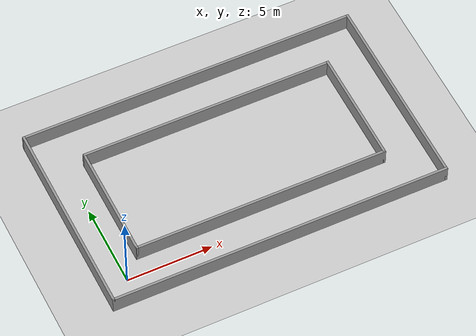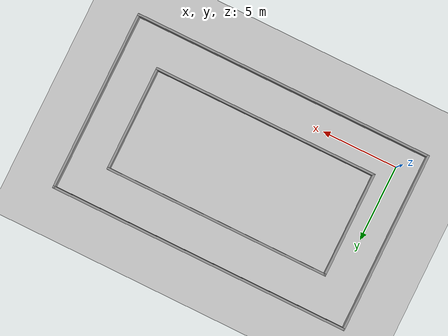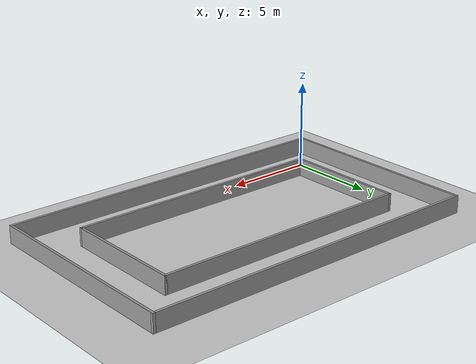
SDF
<sdf version='1.6'>
  <world name='default'>
    <light name='sun' type='directional'>
      <cast_shadows>1</cast_shadows>
      <pose frame=''>0 0 10 0 -0 0</pose>
      <diffuse>0.8 0.8 0.8 1</diffuse>
      <specular>0.2 0.2 0.2 1</specular>
      <attenuation>
        <range>1000</range>
        <constant>0.9</constant>
        <linear>0.01</linear>
        <quadratic>0.001</quadratic>
      </attenuation>
      <direction>-0.5 0.1 -0.9</direction>
    </light>
    <model name='ground_plane'>
      <static>1</static>
      <link name='link'>
        <collision name='collision'>
          <geometry>
            <plane>
              <normal>0 0 1</normal>
              <size>100 100</size>
            </plane>
          </geometry>
          <surface>
            <contact>
              <collide_bitmask>65535</collide_bitmask>
              <ode/>
            </contact>
            <friction>
              <ode>
                <mu>100</mu>
                <mu2>50</mu2>
              </ode>
              <torsional>
                <ode/>
              </torsional>
            </friction>
            <bounce/>
          </surface>
          <max_contacts>10</max_contacts>
        </collision>
        <visual name='visual'>
          <cast_shadows>0</cast_shadows>
          <geometry>
            <plane>
              <normal>0 0 1</normal>
              <size>100 100</size>
            </plane>
          </geometry>
          <material>
            <script>
              <uri>file://media/materials/scripts/gazebo.material</uri>
              <name>Gazebo/Grey</name>
            </script>
          </material>
        </visual>
        <self_collide>0</self_collide>
        <enable_wind>0</enable_wind>
        <kinematic>0</kinematic>
      </link>
    </model>
    <gravity>0 0 -9.8</gravity>
    <magnetic_field>6e-06 2.3e-05 -4.2e-05</magnetic_field>
    <atmosphere type='adiabatic'/>
    <physics name='default_physics' default='0' type='ode'>
      <max_step_size>0.001</max_step_size>
      <real_time_factor>1</real_time_factor>
      <real_time_update_rate>1000</real_time_update_rate>
    </physics>
    <scene>
      <ambient>0.4 0.4 0.4 1</ambient>
      <background>0.7 0.7 0.7 1</background>
      <shadows>1</shadows>
    </scene>
    <wind/>
    <spherical_coordinates>
      <surface_model>EARTH_WGS84</surface_model>
      <latitude_deg>0</latitude_deg>
      <longitude_deg>0</longitude_deg>
      <elevation>0</elevation>
      <heading_deg>0</heading_deg>
    </spherical_coordinates>
    <model name='Untitled'>
      <pose frame=''>8.5 4.5 0 0 -0 0</pose>
      <link name='Wall_17'>
        <collision name='Wall_17_Collision'>
          <geometry>
            <box>
              <size>15 0.15 1</size>
            </box>
          </geometry>
          <pose frame=''>0 0 0.5 0 -0 0</pose>
          <max_contacts>10</max_contacts>
          <surface>
            <contact>
              <ode/>
            </contact>
            <bounce/>
            <friction>
              <torsional>
                <ode/>
              </torsional>
              <ode/>
            </friction>
          </surface>
        </collision>
        <visual name='Wall_17_Visual'>
          <pose frame=''>0 0 0.5 0 -0 0</pose>
          <geometry>
            <box>
              <size>15 0.15 1</size>
            </box>
          </geometry>
          <material>
            <script>
              <uri>file://media/materials/scripts/gazebo.material</uri>
              <name>Gazebo/Grey</name>
            </script>
            <ambient>1 1 1 1</ambient>
          </material>
          <meta>
            <layer>0</layer>
          </meta>
        </visual>
        <pose frame=''>0 3.425 0 0 -0 0</pose>
        <self_collide>0</self_collide>
        <enable_wind>0</enable_wind>
        <kinematic>0</kinematic>
      </link>
      <link name='Wall_19'>
        <collision name='Wall_19_Collision'>
          <geometry>
            <box>
              <size>15 0.15 1</size>
            </box>
          </geometry>
          <pose frame=''>0 0 0.5 0 -0 0</pose>
          <max_contacts>10</max_contacts>
          <surface>
            <contact>
              <ode/>
            </contact>
            <bounce/>
            <friction>
              <torsional>
                <ode/>
              </torsional>
              <ode/>
            </friction>
          </surface>
        </collision>
        <visual name='Wall_19_Visual'>
          <pose frame=''>0 0 0.5 0 -0 0</pose>
          <geometry>
            <box>
              <size>15 0.15 1</size>
            </box>
          </geometry>
          <material>
            <script>
              <uri>file://media/materials/scripts/gazebo.material</uri>
              <name>Gazebo/Grey</name>
            </script>
            <ambient>1 1 1 1</ambient>
          </material>
          <meta>
            <layer>0</layer>
          </meta>
        </visual>
        <pose frame=''>0 -3.425 0 0 -0 0</pose>
        <self_collide>0</self_collide>
        <enable_wind>0</enable_wind>
        <kinematic>0</kinematic>
      </link>
      <link name='Wall_2'>
        <collision name='Wall_2_Collision'>
          <geometry>
            <box>
              <size>12 0.15 1</size>
            </box>
          </geometry>
          <pose frame=''>0 0 0.5 0 -0 0</pose>
          <max_contacts>10</max_contacts>
          <surface>
            <contact>
              <ode/>
            </contact>
            <bounce/>
            <friction>
              <torsional>
                <ode/>
              </torsional>
              <ode/>
            </friction>
          </surface>
        </collision>
        <visual name='Wall_2_Visual'>
          <pose frame=''>0 0 0.5 0 -0 0</pose>
          <geometry>
            <box>
              <size>12 0.15 1</size>
            </box>
          </geometry>
          <material>
            <script>
              <uri>file://media/materials/scripts/gazebo.material</uri>
              <name>Gazebo/Grey</name>
            </script>
            <ambient>1 1 1 1</ambient>
          </material>
          <meta>
            <layer>0</layer>
          </meta>
        </visual>
        <pose frame=''>-9.925 -0 0 0 -0 -1.5708</pose>
        <self_collide>0</self_collide>
        <enable_wind>0</enable_wind>
        <kinematic>0</kinematic>
      </link>
      <link name='Wall_21'>
        <collision name='Wall_21_Collision'>
          <geometry>
            <box>
              <size>7 0.15 1</size>
            </box>
          </geometry>
          <pose frame=''>0 0 0.5 0 -0 0</pose>
          <max_contacts>10</max_contacts>
          <surface>
            <contact>
              <ode/>
            </contact>
            <bounce/>
            <friction>
              <torsional>
                <ode/>
              </torsional>
              <ode/>
            </friction>
          </surface>
        </collision>
        <visual name='Wall_21_Visual'>
          <pose frame=''>0 0 0.5 0 -0 0</pose>
          <geometry>
            <box>
              <size>7 0.15 1</size>
            </box>
          </geometry>
          <material>
            <script>
              <uri>file://media/materials/scripts/gazebo.material</uri>
              <name>Gazebo/Grey</name>
            </script>
            <ambient>1 1 1 1</ambient>
          </material>
          <meta>
            <layer>0</layer>
          </meta>
        </visual>
        <pose frame=''>-7.425 -0 0 0 -0 -1.5708</pose>
        <self_collide>0</self_collide>
        <enable_wind>0</enable_wind>
        <kinematic>0</kinematic>
      </link>
      <link name='Wall_23'>
        <collision name='Wall_23_Collision'>
          <geometry>
            <box>
              <size>7 0.15 1</size>
            </box>
          </geometry>
          <pose frame=''>0 0 0.5 0 -0 0</pose>
          <max_contacts>10</max_contacts>
          <surface>
            <contact>
              <ode/>
            </contact>
            <bounce/>
            <friction>
              <torsional>
                <ode/>
              </torsional>
              <ode/>
            </friction>
          </surface>
        </collision>
        <visual name='Wall_23_Visual'>
          <pose frame=''>0 0 0.5 0 -0 0</pose>
          <geometry>
            <box>
              <size>7 0.15 1</size>
            </box>
          </geometry>
          <material>
            <script>
              <uri>file://media/materials/scripts/gazebo.material</uri>
              <name>Gazebo/Grey</name>
            </script>
            <ambient>1 1 1 1</ambient>
          </material>
          <meta>
            <layer>0</layer>
          </meta>
        </visual>
        <pose frame=''>7.425 -0 0 0 -0 -1.5708</pose>
        <self_collide>0</self_collide>
        <enable_wind>0</enable_wind>
        <kinematic>0</kinematic>
      </link>
      <link name='Wall_3'>
        <collision name='Wall_3_Collision'>
          <geometry>
            <box>
              <size>20 0.15 1</size>
            </box>
          </geometry>
          <pose frame=''>0 0 0.5 0 -0 0</pose>
          <max_contacts>10</max_contacts>
          <surface>
            <contact>
              <ode/>
            </contact>
            <bounce/>
            <friction>
              <torsional>
                <ode/>
              </torsional>
              <ode/>
            </friction>
          </surface>
        </collision>
        <visual name='Wall_3_Visual'>
          <pose frame=''>0 0 0.5 0 -0 0</pose>
          <geometry>
            <box>
              <size>20 0.15 1</size>
            </box>
          </geometry>
          <material>
            <script>
              <uri>file://media/materials/scripts/gazebo.material</uri>
              <name>Gazebo/Grey</name>
            </script>
            <ambient>1 1 1 1</ambient>
          </material>
          <meta>
            <layer>0</layer>
          </meta>
        </visual>
        <pose frame=''>0 -5.925 0 0 -0 0</pose>
        <self_collide>0</self_collide>
        <enable_wind>0</enable_wind>
        <kinematic>0</kinematic>
      </link>
      <link name='Wall_4'>
        <collision name='Wall_4_Collision'>
          <geometry>
            <box>
              <size>12 0.15 1</size>
            </box>
          </geometry>
          <pose frame=''>0 0 0.5 0 -0 0</pose>
          <max_contacts>10</max_contacts>
          <surface>
            <contact>
              <ode/>
            </contact>
            <bounce/>
            <friction>
              <torsional>
                <ode/>
              </torsional>
              <ode/>
            </friction>
          </surface>
        </collision>
        <visual name='Wall_4_Visual'>
          <pose frame=''>0 0 0.5 0 -0 0</pose>
          <geometry>
            <box>
              <size>12 0.15 1</size>
            </box>
          </geometry>
          <material>
            <script>
              <uri>file://media/materials/scripts/gazebo.material</uri>
              <name>Gazebo/Grey</name>
            </script>
            <ambient>1 1 1 1</ambient>
          </material>
          <meta>
            <layer>0</layer>
          </meta>
        </visual>
        <pose frame=''>9.925 -0 0 0 -0 1.5708</pose>
        <self_collide>0</self_collide>
        <enable_wind>0</enable_wind>
        <kinematic>0</kinematic>
      </link>
      <link name='Wall_5'>
        <collision name='Wall_5_Collision'>
          <geometry>
            <box>
              <size>20 0.15 1</size>
            </box>
          </geometry>
          <pose frame=''>0 0 0.5 0 -0 0</pose>
          <max_contacts>10</max_contacts>
          <surface>
            <contact>
              <ode/>
            </contact>
            <bounce/>
            <friction>
              <torsional>
                <ode/>
              </torsional>
              <ode/>
            </friction>
          </surface>
        </collision>
        <visual name='Wall_5_Visual'>
          <pose frame=''>0 0 0.5 0 -0 0</pose>
          <geometry>
            <box>
              <size>20 0.15 1</size>
            </box>
          </geometry>
          <material>
            <script>
              <uri>file://media/materials/scripts/gazebo.material</uri>
              <name>Gazebo/Grey</name>
            </script>
            <ambient>1 1 1 1</ambient>
          </material>
          <meta>
            <layer>0</layer>
          </meta>
        </visual>
        <pose frame=''>0 5.925 0 0 -0 3.14159</pose>
        <self_collide>0</self_collide>
        <enable_wind>0</enable_wind>
        <kinematic>0</kinematic>
      </link>
      <static>1</static>
    </model>
    <gui fullscreen='0'>
      <camera name='user_camera'>
        <pose frame=''>9 5 20 0 1.5707 1.5707</pose>
        <view_controller>orbit</view_controller>
        <projection_type>perspective</projection_type>
      </camera>
    </gui>
  </world>
</sdf>
